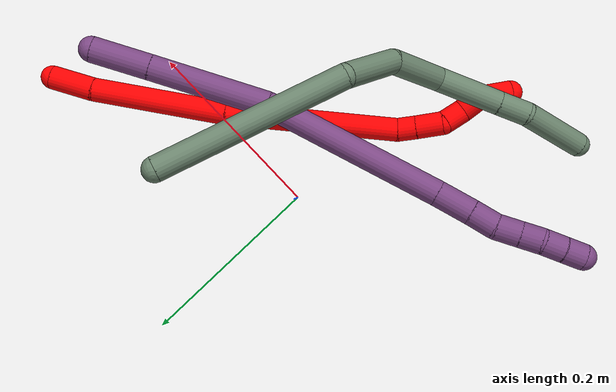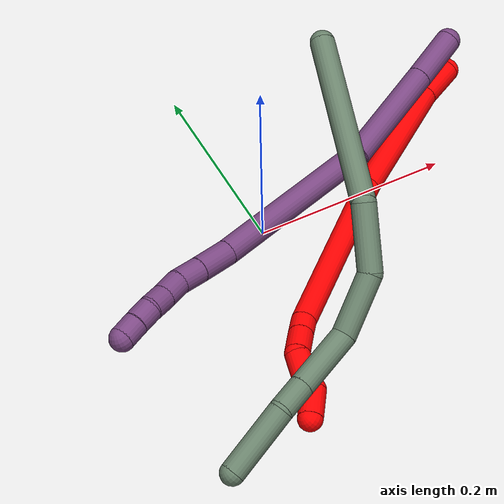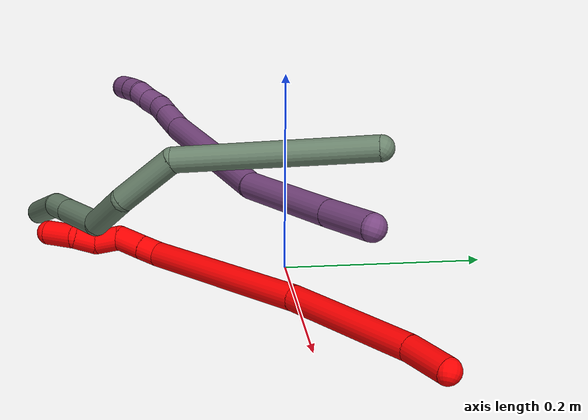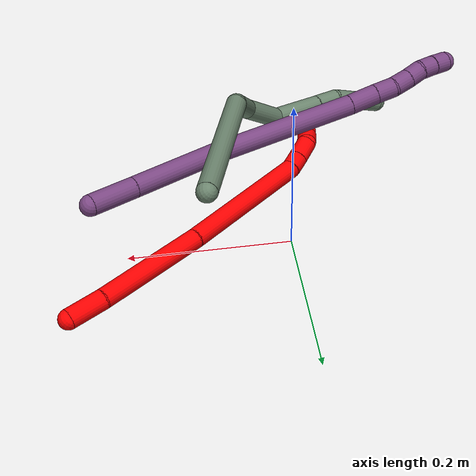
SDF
<sdf version="1.7">
 <world name="default">
  <model name="photoneo_s_sensor">
   <static>1</static>
   <pose>0 0 2 1.57079 1.57079 3.14159</pose>
   <link name="link">
    <inertial><mass>0.1</mass></inertial>
    <sensor name="sensor" type="depth">
     <update_rate>30</update_rate>
     <camera>
      <horizontal_fov>1.22</horizontal_fov>
      <image><width>1920</width><height>1200</height><format>B8G8R8</format></image>
      <clip><near>0.1</near><far>4</far></clip>
      <depth_camera><output>points</output></depth_camera>
     </camera>
     <plugin name="camera_plugin" filename="libgazebo_ros_depth_camera.so">
      <baseline>0.2</baseline>
      <alwaysOn>1</alwaysOn>
      <updateRate>0.0</updateRate>
      <cameraName>camera_ir</cameraName>
      <imageTopicName>/camera/color/image_raw</imageTopicName>
      <cameraInfoTopicName>/camera/color/camera_info</cameraInfoTopicName>
      <depthImageTopicName>/camera/depth/image_raw</depthImageTopicName>
      <depthImageCameraInfoTopicName>/camera/depth/camera_info</depthImageCameraInfoTopicName>
      <pointCloudTopicName>/camera/depth/points</pointCloudTopicName>
      <frameName>fr_optical</frameName>
      <pointCloudCutoff>0.1</pointCloudCutoff>
      <pointCloudCutoffMax>2.0</pointCloudCutoffMax>
      <distortionK1>0</distortionK1>
      <distortionK2>0</distortionK2>
      <distortionK3>0</distortionK3>
      <distortionT1>0</distortionT1>
      <distortionT2>0</distortionT2>
      <CxPrime>0</CxPrime>
      <Cx>0</Cx>
      <Cy>0</Cy>
      <focalLength>0</focalLength>
      <hackBaseline>0</hackBaseline>
     </plugin>
    </sensor>
   </link>
  </model>
  <model name="bin">
   <static>1</static>
   <link name="bottom">
    <collision name="collision-bottom">
     <pose>0 0 -0.01 0 -0 0</pose>
     <geometry><box><size>0.8 0.6 0.02</size></box></geometry>
     <surface>
      <friction><ode><mu>100</mu><mu2>100</mu2></ode></friction>
      <contact><collide_bitmask>65535</collide_bitmask></contact>
     </surface>
    </collision>
   </link>
   <link name="west_wall">
    <collision name="collision-west_wall">
     <pose>-0.41 0 0.1 0 -0 0</pose>
     <geometry><box><size>0.02 0.6 0.2</size></box></geometry>
     <surface>
      <friction><ode><mu>100</mu><mu2>100</mu2></ode></friction>
      <contact><collide_bitmask>65535</collide_bitmask></contact>
     </surface>
    </collision>
   </link>
   <link name="east_wall">
    <collision name="collision-east_wall">
     <pose>0.41 0 0.1 0 -0 0</pose>
     <geometry><box><size>0.02 0.6 0.2</size></box></geometry>
     <surface>
      <friction><ode><mu>100</mu><mu2>100</mu2></ode></friction>
      <contact><collide_bitmask>65535</collide_bitmask></contact>
     </surface>
    </collision>
   </link>
   <link name="south_wall">
    <collision name="collision-south_wall">
     <pose>0 -0.31 0.1 0 -0 0</pose>
     <geometry><box><size>0.8 0.02 0.2</size></box></geometry>
     <surface>
      <friction><ode><mu>100</mu><mu2>100</mu2></ode></friction>
      <contact><collide_bitmask>65535</collide_bitmask></contact>
     </surface>
    </collision>
   </link>
   <link name="north_wall">
    <collision name="collision-north_wall">
     <pose>0 0.31 0.1 0 -0 0</pose>
     <geometry><box><size>0.8 0.02 0.2</size></box></geometry>
     <surface>
      <friction><ode><mu>100</mu><mu2>100</mu2></ode></friction>
      <contact><collide_bitmask>65535</collide_bitmask></contact>
     </surface>
    </collision>
   </link>
  </model>
  <model name="2">
   <static>0</static>
   <link name="2">
    <collision name="collision-cylinder-e_1_1_4">
     <pose>-0.019655 -0.006708 0.009765 0.601879 -1.02836 -0.347101</pose>
     <geometry><cylinder><radius>0.0125</radius><length>0.0459</length></cylinder></geometry>
     <surface>
      <friction><ode><mu>1.16</mu><mu2>1.16</mu2><slip1>0</slip1><slip2>0</slip2></ode></friction>
      <contact><ode><kp>1e+06</kp><kd>1</kd><max_vel>0</max_vel><min_depth>0.001</min_depth></ode></contact>
     </surface>
    </collision>
    <visual name="visual-cylinder-e_1_1_4">
     <pose>-0.019655 -0.006708 0.009765 0.601879 -1.02836 -0.347101</pose>
     <geometry><cylinder><radius>0.0125</radius><length>0.0459</length></cylinder></geometry>
     <material><ambient>1 0 0 1</ambient></material>
    </visual>
    <collision name="collision-cylinder-e_2_4_5">
     <pose>-0.10122 -0.039114 0.042359 0.844472 -1.06395 -0.517007</pose>
     <geometry><cylinder><radius>0.0125</radius><length>0.141624</length></cylinder></geometry>
     <surface>
      <friction><ode><mu>1.16</mu><mu2>1.16</mu2><slip1>0</slip1><slip2>0</slip2></ode></friction>
      <contact><ode><kp>1e+06</kp><kd>1</kd><max_vel>0</max_vel><min_depth>0.001</min_depth></ode></contact>
     </surface>
    </collision>
    <visual name="visual-cylinder-e_2_4_5">
     <pose>-0.10122 -0.039114 0.042359 0.844472 -1.06395 -0.517007</pose>
     <geometry><cylinder><radius>0.0125</radius><length>0.141624</length></cylinder></geometry>
     <material><ambient>1 0 0 1</ambient></material>
    </visual>
    <collision name="collision-cylinder-e_3_5_6">
     <pose>-0.243137 -0.102795 0.08781 1.03361 -1.06599 -0.647012</pose>
     <geometry><cylinder><radius>0.0125</radius><length>0.182817</length></cylinder></geometry>
     <surface>
      <friction><ode><mu>1.16</mu><mu2>1.16</mu2><slip1>0</slip1><slip2>0</slip2></ode></friction>
      <contact><ode><kp>1e+06</kp><kd>1</kd><max_vel>0</max_vel><min_depth>0.001</min_depth></ode></contact>
     </surface>
    </collision>
    <visual name="visual-cylinder-e_3_5_6">
     <pose>-0.243137 -0.102795 0.08781 1.03361 -1.06599 -0.647012</pose>
     <geometry><cylinder><radius>0.0125</radius><length>0.182817</length></cylinder></geometry>
     <material><ambient>1 0 0 1</ambient></material>
    </visual>
    <collision name="collision-cylinder-e_4_6_7">
     <pose>-0.330281 -0.147382 0.113091 1.18816 -0.786643 -0.546548</pose>
     <geometry><cylinder><radius>0.0125</radius><length>0.020164</length></cylinder></geometry>
     <surface>
      <friction><ode><mu>1.16</mu><mu2>1.16</mu2><slip1>0</slip1><slip2>0</slip2></ode></friction>
      <contact><ode><kp>1e+06</kp><kd>1</kd><max_vel>0</max_vel><min_depth>0.001</min_depth></ode></contact>
     </surface>
    </collision>
    <visual name="visual-cylinder-e_4_6_7">
     <pose>-0.330281 -0.147382 0.113091 1.18816 -0.786643 -0.546548</pose>
     <geometry><cylinder><radius>0.0125</radius><length>0.020164</length></cylinder></geometry>
     <material><ambient>1 0 0 1</ambient></material>
    </visual>
    <collision name="collision-cylinder-e_5_7_8">
     <pose>-0.347173 -0.163748 0.119657 1.19001 -0.747891 -0.5192</pose>
     <geometry><cylinder><radius>0.0125</radius><length>0.028684</length></cylinder></geometry>
     <surface>
      <friction><ode><mu>1.16</mu><mu2>1.16</mu2><slip1>0</slip1><slip2>0</slip2></ode></friction>
      <contact><ode><kp>1e+06</kp><kd>1</kd><max_vel>0</max_vel><min_depth>0.001</min_depth></ode></contact>
     </surface>
    </collision>
    <visual name="visual-cylinder-e_5_7_8">
     <pose>-0.347173 -0.163748 0.119657 1.19001 -0.747891 -0.5192</pose>
     <geometry><cylinder><radius>0.0125</radius><length>0.028684</length></cylinder></geometry>
     <material><ambient>1 0 0 1</ambient></material>
    </visual>
    <collision name="collision-cylinder-e_6_8_9">
     <pose>-0.365011 -0.182327 0.119679 1.98587 -0.698085 -1.01807</pose>
     <geometry><cylinder><radius>0.0125</radius><length>0.025156</length></cylinder></geometry>
     <surface>
      <friction><ode><mu>1.16</mu><mu2>1.16</mu2><slip1>0</slip1><slip2>0</slip2></ode></friction>
      <contact><ode><kp>1e+06</kp><kd>1</kd><max_vel>0</max_vel><min_depth>0.001</min_depth></ode></contact>
     </surface>
    </collision>
    <visual name="visual-cylinder-e_6_8_9">
     <pose>-0.365011 -0.182327 0.119679 1.98587 -0.698085 -1.01807</pose>
     <geometry><cylinder><radius>0.0125</radius><length>0.025156</length></cylinder></geometry>
     <material><ambient>1 0 0 1</ambient></material>
    </visual>
    <collision name="collision-cylinder-e_7_9_10">
     <pose>-0.376886 -0.201711 0.115977 1.55338 -0.344378 -0.338546</pose>
     <geometry><cylinder><radius>0.0125</radius><length>0.022454</length></cylinder></geometry>
     <surface>
      <friction><ode><mu>1.16</mu><mu2>1.16</mu2><slip1>0</slip1><slip2>0</slip2></ode></friction>
      <contact><ode><kp>1e+06</kp><kd>1</kd><max_vel>0</max_vel><min_depth>0.001</min_depth></ode></contact>
     </surface>
    </collision>
    <visual name="visual-cylinder-e_7_9_10">
     <pose>-0.376886 -0.201711 0.115977 1.55338 -0.344378 -0.338546</pose>
     <geometry><cylinder><radius>0.0125</radius><length>0.022454</length></cylinder></geometry>
     <material><ambient>1 0 0 1</ambient></material>
    </visual>
    <collision name="collision-cylinder-e_8_10_2">
     <pose>-0.393822 -0.222337 0.117424 1.44597 -0.913763 -0.818507</pose>
     <geometry><cylinder><radius>0.0125</radius><length>0.033202</length></cylinder></geometry>
     <surface>
      <friction><ode><mu>1.16</mu><mu2>1.16</mu2><slip1>0</slip1><slip2>0</slip2></ode></friction>
      <contact><ode><kp>1e+06</kp><kd>1</kd><max_vel>0</max_vel><min_depth>0.001</min_depth></ode></contact>
     </surface>
    </collision>
    <visual name="visual-cylinder-e_8_10_2">
     <pose>-0.393822 -0.222337 0.117424 1.44597 -0.913763 -0.818507</pose>
     <geometry><cylinder><radius>0.0125</radius><length>0.033202</length></cylinder></geometry>
     <material><ambient>1 0 0 1</ambient></material>
    </visual>
    <collision name="collision-sphere-2">
     <pose>-0.406967 -0.232398 0.118686 0 -0 0</pose>
     <geometry><sphere><radius>0.0125</radius></sphere></geometry>
     <surface>
      <friction><ode><mu>1.16</mu><mu2>1.16</mu2><slip1>0</slip1><slip2>0</slip2></ode></friction>
      <contact><ode><kp>1e+06</kp><kd>1</kd><max_vel>0</max_vel><min_depth>0.001</min_depth></ode></contact>
     </surface>
    </collision>
    <visual name="visual-sphere-2">
     <pose>-0.406967 -0.232398 0.118686 0 -0 0</pose>
     <geometry><sphere><radius>0.0125</radius></sphere></geometry>
     <material><ambient>1 0 0 1</ambient></material>
    </visual>
    <collision name="collision-sphere-10">
     <pose>-0.380677 -0.212277 0.116161 0 -0 0</pose>
     <geometry><sphere><radius>0.0125</radius></sphere></geometry>
     <surface>
      <friction><ode><mu>1.16</mu><mu2>1.16</mu2><slip1>0</slip1><slip2>0</slip2></ode></friction>
      <contact><ode><kp>1e+06</kp><kd>1</kd><max_vel>0</max_vel><min_depth>0.001</min_depth></ode></contact>
     </surface>
    </collision>
    <visual name="visual-sphere-10">
     <pose>-0.380677 -0.212277 0.116161 0 -0 0</pose>
     <geometry><sphere><radius>0.0125</radius></sphere></geometry>
     <material><ambient>1 0 0 1</ambient></material>
    </visual>
    <collision name="collision-sphere-9">
     <pose>-0.373096 -0.191144 0.115793 0 -0 0</pose>
     <geometry><sphere><radius>0.0125</radius></sphere></geometry>
     <surface>
      <friction><ode><mu>1.16</mu><mu2>1.16</mu2><slip1>0</slip1><slip2>0</slip2></ode></friction>
      <contact><ode><kp>1e+06</kp><kd>1</kd><max_vel>0</max_vel><min_depth>0.001</min_depth></ode></contact>
     </surface>
    </collision>
    <visual name="visual-sphere-9">
     <pose>-0.373096 -0.191144 0.115793 0 -0 0</pose>
     <geometry><sphere><radius>0.0125</radius></sphere></geometry>
     <material><ambient>1 0 0 1</ambient></material>
    </visual>
    <collision name="collision-sphere-4">
     <pose>-0.039311 -0.013416 0.019531 0 -0 0</pose>
     <geometry><sphere><radius>0.0125</radius></sphere></geometry>
     <surface>
      <friction><ode><mu>1.16</mu><mu2>1.16</mu2><slip1>0</slip1><slip2>0</slip2></ode></friction>
      <contact><ode><kp>1e+06</kp><kd>1</kd><max_vel>0</max_vel><min_depth>0.001</min_depth></ode></contact>
     </surface>
    </collision>
    <visual name="visual-sphere-4">
     <pose>-0.039311 -0.013416 0.019531 0 -0 0</pose>
     <geometry><sphere><radius>0.0125</radius></sphere></geometry>
     <material><ambient>1 0 0 1</ambient></material>
    </visual>
    <collision name="collision-sphere-1">
     <geometry><sphere><radius>0.0125</radius></sphere></geometry>
     <surface>
      <friction><ode><mu>1.16</mu><mu2>1.16</mu2><slip1>0</slip1><slip2>0</slip2></ode></friction>
      <contact><ode><kp>1e+06</kp><kd>1</kd><max_vel>0</max_vel><min_depth>0.001</min_depth></ode></contact>
     </surface>
    </collision>
    <visual name="visual-sphere-1">
     <geometry><sphere><radius>0.0125</radius></sphere></geometry>
     <material><ambient>1 0 0 1</ambient></material>
    </visual>
    <collision name="collision-sphere-8">
     <pose>-0.356927 -0.173509 0.123564 0 -0 0</pose>
     <geometry><sphere><radius>0.0125</radius></sphere></geometry>
     <surface>
      <friction><ode><mu>1.16</mu><mu2>1.16</mu2><slip1>0</slip1><slip2>0</slip2></ode></friction>
      <contact><ode><kp>1e+06</kp><kd>1</kd><max_vel>0</max_vel><min_depth>0.001</min_depth></ode></contact>
     </surface>
    </collision>
    <visual name="visual-sphere-8">
     <pose>-0.356927 -0.173509 0.123564 0 -0 0</pose>
     <geometry><sphere><radius>0.0125</radius></sphere></geometry>
     <material><ambient>1 0 0 1</ambient></material>
    </visual>
    <collision name="collision-sphere-5">
     <pose>-0.16313 -0.064813 0.065188 0 -0 0</pose>
     <geometry><sphere><radius>0.0125</radius></sphere></geometry>
     <surface>
      <friction><ode><mu>1.16</mu><mu2>1.16</mu2><slip1>0</slip1><slip2>0</slip2></ode></friction>
      <contact><ode><kp>1e+06</kp><kd>1</kd><max_vel>0</max_vel><min_depth>0.001</min_depth></ode></contact>
     </surface>
    </collision>
    <visual name="visual-sphere-5">
     <pose>-0.16313 -0.064813 0.065188 0 -0 0</pose>
     <geometry><sphere><radius>0.0125</radius></sphere></geometry>
     <material><ambient>1 0 0 1</ambient></material>
    </visual>
    <collision name="collision-sphere-6">
     <pose>-0.323143 -0.140776 0.110432 0 -0 0</pose>
     <geometry><sphere><radius>0.0125</radius></sphere></geometry>
     <surface>
      <friction><ode><mu>1.16</mu><mu2>1.16</mu2><slip1>0</slip1><slip2>0</slip2></ode></friction>
      <contact><ode><kp>1e+06</kp><kd>1</kd><max_vel>0</max_vel><min_depth>0.001</min_depth></ode></contact>
     </surface>
    </collision>
    <visual name="visual-sphere-6">
     <pose>-0.323143 -0.140776 0.110432 0 -0 0</pose>
     <geometry><sphere><radius>0.0125</radius></sphere></geometry>
     <material><ambient>1 0 0 1</ambient></material>
    </visual>
    <collision name="collision-sphere-7">
     <pose>-0.337419 -0.153987 0.115749 0 -0 0</pose>
     <geometry><sphere><radius>0.0125</radius></sphere></geometry>
     <surface>
      <friction><ode><mu>1.16</mu><mu2>1.16</mu2><slip1>0</slip1><slip2>0</slip2></ode></friction>
      <contact><ode><kp>1e+06</kp><kd>1</kd><max_vel>0</max_vel><min_depth>0.001</min_depth></ode></contact>
     </surface>
    </collision>
    <visual name="visual-sphere-7">
     <pose>-0.337419 -0.153987 0.115749 0 -0 0</pose>
     <geometry><sphere><radius>0.0125</radius></sphere></geometry>
     <material><ambient>1 0 0 1</ambient></material>
    </visual>
    <inertial>
     <pose>-0.214051 -0.097613 0.075453 0 -0 0</pose>
     <mass>0.5</mass>
     <inertia>
      <ixx>6.6e-05</ixx>
      <ixy>0</ixy>
      <ixz>0</ixz>
      <iyy>0.000445</iyy>
      <iyz>0</iyz>
      <izz>0.001004</izz>
     </inertia>
    </inertial>
   </link>
   <pose>0.270781 0.100546 0.012218 -0.523349 -0.476601 0.479194</pose>
  </model>
  <model name="17">
   <static>0</static>
   <link name="17">
    <collision name="collision-cylinder-e_1_1_4">
     <pose>-0.060422 -0.069358 0.033386 1.12218 -0.665501 -0.427755</pose>
     <geometry><cylinder><radius>0.0125</radius><length>0.195715</length></cylinder></geometry>
     <surface>
      <friction><ode><mu>1.16</mu><mu2>1.16</mu2><slip1>0</slip1><slip2>0</slip2></ode></friction>
      <contact><ode><kp>1e+06</kp><kd>1</kd><max_vel>0</max_vel><min_depth>0.001</min_depth></ode></contact>
     </surface>
    </collision>
    <visual name="visual-cylinder-e_1_1_4">
     <pose>-0.060422 -0.069358 0.033386 1.12218 -0.665501 -0.427755</pose>
     <geometry><cylinder><radius>0.0125</radius><length>0.195715</length></cylinder></geometry>
     <material><ambient>0.415686 0.509804 0.423529 1</ambient></material>
    </visual>
    <collision name="collision-cylinder-e_2_4_5">
     <pose>-0.12453 -0.164501 0.088014 0.881661 -0.10987 -0.051877</pose>
     <geometry><cylinder><radius>0.0125</radius><length>0.06722</length></cylinder></geometry>
     <surface>
      <friction><ode><mu>1.16</mu><mu2>1.16</mu2><slip1>0</slip1><slip2>0</slip2></ode></friction>
      <contact><ode><kp>1e+06</kp><kd>1</kd><max_vel>0</max_vel><min_depth>0.001</min_depth></ode></contact>
     </surface>
    </collision>
    <visual name="visual-cylinder-e_2_4_5">
     <pose>-0.12453 -0.164501 0.088014 0.881661 -0.10987 -0.051877</pose>
     <geometry><cylinder><radius>0.0125</radius><length>0.06722</length></cylinder></geometry>
     <material><ambient>0.415686 0.509804 0.423529 1</ambient></material>
    </visual>
    <collision name="collision-cylinder-e_3_5_6">
     <pose>-0.123156 -0.22064 0.117645 1.3012 0.159278 0.121343</pose>
     <geometry><cylinder><radius>0.0125</radius><length>0.063793</length></cylinder></geometry>
     <surface>
      <friction><ode><mu>1.16</mu><mu2>1.16</mu2><slip1>0</slip1><slip2>0</slip2></ode></friction>
      <contact><ode><kp>1e+06</kp><kd>1</kd><max_vel>0</max_vel><min_depth>0.001</min_depth></ode></contact>
     </surface>
    </collision>
    <visual name="visual-cylinder-e_3_5_6">
     <pose>-0.123156 -0.22064 0.117645 1.3012 0.159278 0.121343</pose>
     <geometry><cylinder><radius>0.0125</radius><length>0.063793</length></cylinder></geometry>
     <material><ambient>0.415686 0.509804 0.423529 1</ambient></material>
    </visual>
    <collision name="collision-cylinder-e_4_6_7">
     <pose>-0.121863 -0.283954 0.118543 1.79422 -0.110949 -0.138906</pose>
     <geometry><cylinder><radius>0.0125</radius><length>0.068017</length></cylinder></geometry>
     <surface>
      <friction><ode><mu>1.16</mu><mu2>1.16</mu2><slip1>0</slip1><slip2>0</slip2></ode></friction>
      <contact><ode><kp>1e+06</kp><kd>1</kd><max_vel>0</max_vel><min_depth>0.001</min_depth></ode></contact>
     </surface>
    </collision>
    <visual name="visual-cylinder-e_4_6_7">
     <pose>-0.121863 -0.283954 0.118543 1.79422 -0.110949 -0.138906</pose>
     <geometry><cylinder><radius>0.0125</radius><length>0.068017</length></cylinder></geometry>
     <material><ambient>0.415686 0.509804 0.423529 1</ambient></material>
    </visual>
    <collision name="collision-cylinder-e_5_7_8">
     <pose>-0.127595 -0.332329 0.107387 1.80434 -0.123479 -0.156179</pose>
     <geometry><cylinder><radius>0.0125</radius><length>0.031935</length></cylinder></geometry>
     <surface>
      <friction><ode><mu>1.16</mu><mu2>1.16</mu2><slip1>0</slip1><slip2>0</slip2></ode></friction>
      <contact><ode><kp>1e+06</kp><kd>1</kd><max_vel>0</max_vel><min_depth>0.001</min_depth></ode></contact>
     </surface>
    </collision>
    <visual name="visual-cylinder-e_5_7_8">
     <pose>-0.127595 -0.332329 0.107387 1.80434 -0.123479 -0.156179</pose>
     <geometry><cylinder><radius>0.0125</radius><length>0.031935</length></cylinder></geometry>
     <material><ambient>0.415686 0.509804 0.423529 1</ambient></material>
    </visual>
    <collision name="collision-cylinder-e_6_8_2">
     <pose>-0.123943 -0.383947 0.102384 1.60768 0.153852 0.159609</pose>
     <geometry><cylinder><radius>0.0125</radius><length>0.07332</length></cylinder></geometry>
     <surface>
      <friction><ode><mu>1.16</mu><mu2>1.16</mu2><slip1>0</slip1><slip2>0</slip2></ode></friction>
      <contact><ode><kp>1e+06</kp><kd>1</kd><max_vel>0</max_vel><min_depth>0.001</min_depth></ode></contact>
     </surface>
    </collision>
    <visual name="visual-cylinder-e_6_8_2">
     <pose>-0.123943 -0.383947 0.102384 1.60768 0.153852 0.159609</pose>
     <geometry><cylinder><radius>0.0125</radius><length>0.07332</length></cylinder></geometry>
     <material><ambient>0.415686 0.509804 0.423529 1</ambient></material>
    </visual>
    <collision name="collision-sphere-2">
     <pose>-0.118325 -0.42015 0.101048 0 -0 0</pose>
     <geometry><sphere><radius>0.0125</radius></sphere></geometry>
     <surface>
      <friction><ode><mu>1.16</mu><mu2>1.16</mu2><slip1>0</slip1><slip2>0</slip2></ode></friction>
      <contact><ode><kp>1e+06</kp><kd>1</kd><max_vel>0</max_vel><min_depth>0.001</min_depth></ode></contact>
     </surface>
    </collision>
    <visual name="visual-sphere-2">
     <pose>-0.118325 -0.42015 0.101048 0 -0 0</pose>
     <geometry><sphere><radius>0.0125</radius></sphere></geometry>
     <material><ambient>0.415686 0.509804 0.423529 1</ambient></material>
    </visual>
    <collision name="collision-sphere-4">
     <pose>-0.120845 -0.138717 0.066771 0 -0 0</pose>
     <geometry><sphere><radius>0.0125</radius></sphere></geometry>
     <surface>
      <friction><ode><mu>1.16</mu><mu2>1.16</mu2><slip1>0</slip1><slip2>0</slip2></ode></friction>
      <contact><ode><kp>1e+06</kp><kd>1</kd><max_vel>0</max_vel><min_depth>0.001</min_depth></ode></contact>
     </surface>
    </collision>
    <visual name="visual-sphere-4">
     <pose>-0.120845 -0.138717 0.066771 0 -0 0</pose>
     <geometry><sphere><radius>0.0125</radius></sphere></geometry>
     <material><ambient>0.415686 0.509804 0.423529 1</ambient></material>
    </visual>
    <collision name="collision-sphere-1">
     <geometry><sphere><radius>0.0125</radius></sphere></geometry>
     <surface>
      <friction><ode><mu>1.16</mu><mu2>1.16</mu2><slip1>0</slip1><slip2>0</slip2></ode></friction>
      <contact><ode><kp>1e+06</kp><kd>1</kd><max_vel>0</max_vel><min_depth>0.001</min_depth></ode></contact>
     </surface>
    </collision>
    <visual name="visual-sphere-1">
     <geometry><sphere><radius>0.0125</radius></sphere></geometry>
     <material><ambient>0.415686 0.509804 0.423529 1</ambient></material>
    </visual>
    <collision name="collision-sphere-8">
     <pose>-0.129562 -0.347745 0.10372 0 -0 0</pose>
     <geometry><sphere><radius>0.0125</radius></sphere></geometry>
     <surface>
      <friction><ode><mu>1.16</mu><mu2>1.16</mu2><slip1>0</slip1><slip2>0</slip2></ode></friction>
      <contact><ode><kp>1e+06</kp><kd>1</kd><max_vel>0</max_vel><min_depth>0.001</min_depth></ode></contact>
     </surface>
    </collision>
    <visual name="visual-sphere-8">
     <pose>-0.129562 -0.347745 0.10372 0 -0 0</pose>
     <geometry><sphere><radius>0.0125</radius></sphere></geometry>
     <material><ambient>0.415686 0.509804 0.423529 1</ambient></material>
    </visual>
    <collision name="collision-sphere-5">
     <pose>-0.128215 -0.190284 0.109257 0 -0 0</pose>
     <geometry><sphere><radius>0.0125</radius></sphere></geometry>
     <surface>
      <friction><ode><mu>1.16</mu><mu2>1.16</mu2><slip1>0</slip1><slip2>0</slip2></ode></friction>
      <contact><ode><kp>1e+06</kp><kd>1</kd><max_vel>0</max_vel><min_depth>0.001</min_depth></ode></contact>
     </surface>
    </collision>
    <visual name="visual-sphere-5">
     <pose>-0.128215 -0.190284 0.109257 0 -0 0</pose>
     <geometry><sphere><radius>0.0125</radius></sphere></geometry>
     <material><ambient>0.415686 0.509804 0.423529 1</ambient></material>
    </visual>
    <collision name="collision-sphere-6">
     <pose>-0.118097 -0.250995 0.126032 0 -0 0</pose>
     <geometry><sphere><radius>0.0125</radius></sphere></geometry>
     <surface>
      <friction><ode><mu>1.16</mu><mu2>1.16</mu2><slip1>0</slip1><slip2>0</slip2></ode></friction>
      <contact><ode><kp>1e+06</kp><kd>1</kd><max_vel>0</max_vel><min_depth>0.001</min_depth></ode></contact>
     </surface>
    </collision>
    <visual name="visual-sphere-6">
     <pose>-0.118097 -0.250995 0.126032 0 -0 0</pose>
     <geometry><sphere><radius>0.0125</radius></sphere></geometry>
     <material><ambient>0.415686 0.509804 0.423529 1</ambient></material>
    </visual>
    <collision name="collision-sphere-7">
     <pose>-0.125628 -0.316913 0.111054 0 -0 0</pose>
     <geometry><sphere><radius>0.0125</radius></sphere></geometry>
     <surface>
      <friction><ode><mu>1.16</mu><mu2>1.16</mu2><slip1>0</slip1><slip2>0</slip2></ode></friction>
      <contact><ode><kp>1e+06</kp><kd>1</kd><max_vel>0</max_vel><min_depth>0.001</min_depth></ode></contact>
     </surface>
    </collision>
    <visual name="visual-sphere-7">
     <pose>-0.125628 -0.316913 0.111054 0 -0 0</pose>
     <geometry><sphere><radius>0.0125</radius></sphere></geometry>
     <material><ambient>0.415686 0.509804 0.423529 1</ambient></material>
    </visual>
    <inertial>
     <pose>-0.099008 -0.19357 0.077909 0 -0 0</pose>
     <mass>0.5</mass>
     <inertia>
      <ixx>0.000358</ixx>
      <ixy>0</ixy>
      <ixz>0</ixz>
      <iyy>0.000176</iyy>
      <iyz>0</iyz>
      <izz>0.000955</izz>
     </inertia>
    </inertial>
   </link>
   <pose>0.106618 0.073491 0.154796 2.70765 0.646785 1.80435</pose>
  </model>
  <model name="20">
   <static>0</static>
   <link name="20">
    <collision name="collision-cylinder-e_1_1_4">
     <pose>-0.026628 -0.009306 6.1e-05 1.56421 -1.23457 -1.22836</pose>
     <geometry><cylinder><radius>0.0125</radius><length>0.056414</length></cylinder></geometry>
     <surface>
      <friction><ode><mu>1.16</mu><mu2>1.16</mu2><slip1>0</slip1><slip2>0</slip2></ode></friction>
      <contact><ode><kp>1e+06</kp><kd>1</kd><max_vel>0</max_vel><min_depth>0.001</min_depth></ode></contact>
     </surface>
    </collision>
    <visual name="visual-cylinder-e_1_1_4">
     <pose>-0.026628 -0.009306 6.1e-05 1.56421 -1.23457 -1.22836</pose>
     <geometry><cylinder><radius>0.0125</radius><length>0.056414</length></cylinder></geometry>
     <material><ambient>0.478431 0.278431 0.509804 1</ambient></material>
    </visual>
    <collision name="collision-cylinder-e_2_4_5">
     <pose>-0.107848 -0.037683 0.001144 1.51732 -1.23427 -1.18423</pose>
     <geometry><cylinder><radius>0.0125</radius><length>0.115675</length></cylinder></geometry>
     <surface>
      <friction><ode><mu>1.16</mu><mu2>1.16</mu2><slip1>0</slip1><slip2>0</slip2></ode></friction>
      <contact><ode><kp>1e+06</kp><kd>1</kd><max_vel>0</max_vel><min_depth>0.001</min_depth></ode></contact>
     </surface>
    </collision>
    <visual name="visual-cylinder-e_2_4_5">
     <pose>-0.107848 -0.037683 0.001144 1.51732 -1.23427 -1.18423</pose>
     <geometry><cylinder><radius>0.0125</radius><length>0.115675</length></cylinder></geometry>
     <material><ambient>0.478431 0.278431 0.509804 1</ambient></material>
    </visual>
    <collision name="collision-cylinder-e_3_5_6">
     <pose>-0.249206 -0.075794 0.019338 0.836888 -1.28346 -0.641645</pose>
     <geometry><cylinder><radius>0.0125</radius><length>0.180948</length></cylinder></geometry>
     <surface>
      <friction><ode><mu>1.16</mu><mu2>1.16</mu2><slip1>0</slip1><slip2>0</slip2></ode></friction>
      <contact><ode><kp>1e+06</kp><kd>1</kd><max_vel>0</max_vel><min_depth>0.001</min_depth></ode></contact>
     </surface>
    </collision>
    <visual name="visual-cylinder-e_3_5_6">
     <pose>-0.249206 -0.075794 0.019338 0.836888 -1.28346 -0.641645</pose>
     <geometry><cylinder><radius>0.0125</radius><length>0.180948</length></cylinder></geometry>
     <material><ambient>0.478431 0.278431 0.509804 1</ambient></material>
    </visual>
    <collision name="collision-cylinder-e_4_6_7">
     <pose>-0.352769 -0.098756 0.041601 0.656585 -1.20542 -0.460461</pose>
     <geometry><cylinder><radius>0.0125</radius><length>0.035971</length></cylinder></geometry>
     <surface>
      <friction><ode><mu>1.16</mu><mu2>1.16</mu2><slip1>0</slip1><slip2>0</slip2></ode></friction>
      <contact><ode><kp>1e+06</kp><kd>1</kd><max_vel>0</max_vel><min_depth>0.001</min_depth></ode></contact>
     </surface>
    </collision>
    <visual name="visual-cylinder-e_4_6_7">
     <pose>-0.352769 -0.098756 0.041601 0.656585 -1.20542 -0.460461</pose>
     <geometry><cylinder><radius>0.0125</radius><length>0.035971</length></cylinder></geometry>
     <material><ambient>0.478431 0.278431 0.509804 1</ambient></material>
    </visual>
    <collision name="collision-cylinder-e_5_7_8">
     <pose>-0.381641 -0.105137 0.050407 0.584538 -1.21727 -0.413377</pose>
     <geometry><cylinder><radius>0.0125</radius><length>0.025739</length></cylinder></geometry>
     <surface>
      <friction><ode><mu>1.16</mu><mu2>1.16</mu2><slip1>0</slip1><slip2>0</slip2></ode></friction>
      <contact><ode><kp>1e+06</kp><kd>1</kd><max_vel>0</max_vel><min_depth>0.001</min_depth></ode></contact>
     </surface>
    </collision>
    <visual name="visual-cylinder-e_5_7_8">
     <pose>-0.381641 -0.105137 0.050407 0.584538 -1.21727 -0.413377</pose>
     <geometry><cylinder><radius>0.0125</radius><length>0.025739</length></cylinder></geometry>
     <material><ambient>0.478431 0.278431 0.509804 1</ambient></material>
    </visual>
    <collision name="collision-cylinder-e_6_8_9">
     <pose>-0.404467 -0.112164 0.056103 1.16171 -1.13716 -0.794255</pose>
     <geometry><cylinder><radius>0.0125</radius><length>0.023698</length></cylinder></geometry>
     <surface>
      <friction><ode><mu>1.16</mu><mu2>1.16</mu2><slip1>0</slip1><slip2>0</slip2></ode></friction>
      <contact><ode><kp>1e+06</kp><kd>1</kd><max_vel>0</max_vel><min_depth>0.001</min_depth></ode></contact>
     </surface>
    </collision>
    <visual name="visual-cylinder-e_6_8_9">
     <pose>-0.404467 -0.112164 0.056103 1.16171 -1.13716 -0.794255</pose>
     <geometry><cylinder><radius>0.0125</radius><length>0.023698</length></cylinder></geometry>
     <material><ambient>0.478431 0.278431 0.509804 1</ambient></material>
    </visual>
    <collision name="collision-cylinder-e_7_9_10">
     <pose>-0.424428 -0.121166 0.060744 1.03035 -1.05916 -0.640037</pose>
     <geometry><cylinder><radius>0.0125</radius><length>0.021122</length></cylinder></geometry>
     <surface>
      <friction><ode><mu>1.16</mu><mu2>1.16</mu2><slip1>0</slip1><slip2>0</slip2></ode></friction>
      <contact><ode><kp>1e+06</kp><kd>1</kd><max_vel>0</max_vel><min_depth>0.001</min_depth></ode></contact>
     </surface>
    </collision>
    <visual name="visual-cylinder-e_7_9_10">
     <pose>-0.424428 -0.121166 0.060744 1.03035 -1.05916 -0.640037</pose>
     <geometry><cylinder><radius>0.0125</radius><length>0.021122</length></cylinder></geometry>
     <material><ambient>0.478431 0.278431 0.509804 1</ambient></material>
    </visual>
    <collision name="collision-cylinder-e_8_10_11">
     <pose>-0.443351 -0.12849 0.064108 1.33185 -1.27362 -1.05275</pose>
     <geometry><cylinder><radius>0.0125</radius><length>0.02032</length></cylinder></geometry>
     <surface>
      <friction><ode><mu>1.16</mu><mu2>1.16</mu2><slip1>0</slip1><slip2>0</slip2></ode></friction>
      <contact><ode><kp>1e+06</kp><kd>1</kd><max_vel>0</max_vel><min_depth>0.001</min_depth></ode></contact>
     </surface>
    </collision>
    <visual name="visual-cylinder-e_8_10_11">
     <pose>-0.443351 -0.12849 0.064108 1.33185 -1.27362 -1.05275</pose>
     <geometry><cylinder><radius>0.0125</radius><length>0.02032</length></cylinder></geometry>
     <material><ambient>0.478431 0.278431 0.509804 1</ambient></material>
    </visual>
    <collision name="collision-cylinder-e_9_11_2">
     <pose>-0.462768 -0.134024 0.064964 1.51368 -1.30432 -1.24963</pose>
     <geometry><cylinder><radius>0.0125</radius><length>0.020113</length></cylinder></geometry>
     <surface>
      <friction><ode><mu>1.16</mu><mu2>1.16</mu2><slip1>0</slip1><slip2>0</slip2></ode></friction>
      <contact><ode><kp>1e+06</kp><kd>1</kd><max_vel>0</max_vel><min_depth>0.001</min_depth></ode></contact>
     </surface>
    </collision>
    <visual name="visual-cylinder-e_9_11_2">
     <pose>-0.462768 -0.134024 0.064964 1.51368 -1.30432 -1.24963</pose>
     <geometry><cylinder><radius>0.0125</radius><length>0.020113</length></cylinder></geometry>
     <material><ambient>0.478431 0.278431 0.509804 1</ambient></material>
    </visual>
    <collision name="collision-sphere-2">
     <pose>-0.472469 -0.136668 0.065115 0 -0 0</pose>
     <geometry><sphere><radius>0.0125</radius></sphere></geometry>
     <surface>
      <friction><ode><mu>1.16</mu><mu2>1.16</mu2><slip1>0</slip1><slip2>0</slip2></ode></friction>
      <contact><ode><kp>1e+06</kp><kd>1</kd><max_vel>0</max_vel><min_depth>0.001</min_depth></ode></contact>
     </surface>
    </collision>
    <visual name="visual-sphere-2">
     <pose>-0.472469 -0.136668 0.065115 0 -0 0</pose>
     <geometry><sphere><radius>0.0125</radius></sphere></geometry>
     <material><ambient>0.478431 0.278431 0.509804 1</ambient></material>
    </visual>
    <collision name="collision-sphere-11">
     <pose>-0.453066 -0.13138 0.064812 0 -0 0</pose>
     <geometry><sphere><radius>0.0125</radius></sphere></geometry>
     <surface>
      <friction><ode><mu>1.16</mu><mu2>1.16</mu2><slip1>0</slip1><slip2>0</slip2></ode></friction>
      <contact><ode><kp>1e+06</kp><kd>1</kd><max_vel>0</max_vel><min_depth>0.001</min_depth></ode></contact>
     </surface>
    </collision>
    <visual name="visual-sphere-11">
     <pose>-0.453066 -0.13138 0.064812 0 -0 0</pose>
     <geometry><sphere><radius>0.0125</radius></sphere></geometry>
     <material><ambient>0.478431 0.278431 0.509804 1</ambient></material>
    </visual>
    <collision name="collision-sphere-10">
     <pose>-0.433637 -0.125599 0.063404 0 -0 0</pose>
     <geometry><sphere><radius>0.0125</radius></sphere></geometry>
     <surface>
      <friction><ode><mu>1.16</mu><mu2>1.16</mu2><slip1>0</slip1><slip2>0</slip2></ode></friction>
      <contact><ode><kp>1e+06</kp><kd>1</kd><max_vel>0</max_vel><min_depth>0.001</min_depth></ode></contact>
     </surface>
    </collision>
    <visual name="visual-sphere-10">
     <pose>-0.433637 -0.125599 0.063404 0 -0 0</pose>
     <geometry><sphere><radius>0.0125</radius></sphere></geometry>
     <material><ambient>0.478431 0.278431 0.509804 1</ambient></material>
    </visual>
    <collision name="collision-sphere-9">
     <pose>-0.41522 -0.116732 0.058083 0 -0 0</pose>
     <geometry><sphere><radius>0.0125</radius></sphere></geometry>
     <surface>
      <friction><ode><mu>1.16</mu><mu2>1.16</mu2><slip1>0</slip1><slip2>0</slip2></ode></friction>
      <contact><ode><kp>1e+06</kp><kd>1</kd><max_vel>0</max_vel><min_depth>0.001</min_depth></ode></contact>
     </surface>
    </collision>
    <visual name="visual-sphere-9">
     <pose>-0.41522 -0.116732 0.058083 0 -0 0</pose>
     <geometry><sphere><radius>0.0125</radius></sphere></geometry>
     <material><ambient>0.478431 0.278431 0.509804 1</ambient></material>
    </visual>
    <collision name="collision-sphere-4">
     <pose>-0.053255 -0.018612 0.000123 0 -0 0</pose>
     <geometry><sphere><radius>0.0125</radius></sphere></geometry>
     <surface>
      <friction><ode><mu>1.16</mu><mu2>1.16</mu2><slip1>0</slip1><slip2>0</slip2></ode></friction>
      <contact><ode><kp>1e+06</kp><kd>1</kd><max_vel>0</max_vel><min_depth>0.001</min_depth></ode></contact>
     </surface>
    </collision>
    <visual name="visual-sphere-4">
     <pose>-0.053255 -0.018612 0.000123 0 -0 0</pose>
     <geometry><sphere><radius>0.0125</radius></sphere></geometry>
     <material><ambient>0.478431 0.278431 0.509804 1</ambient></material>
    </visual>
    <collision name="collision-sphere-1">
     <geometry><sphere><radius>0.0125</radius></sphere></geometry>
     <surface>
      <friction><ode><mu>1.16</mu><mu2>1.16</mu2><slip1>0</slip1><slip2>0</slip2></ode></friction>
      <contact><ode><kp>1e+06</kp><kd>1</kd><max_vel>0</max_vel><min_depth>0.001</min_depth></ode></contact>
     </surface>
    </collision>
    <visual name="visual-sphere-1">
     <geometry><sphere><radius>0.0125</radius></sphere></geometry>
     <material><ambient>0.478431 0.278431 0.509804 1</ambient></material>
    </visual>
    <collision name="collision-sphere-8">
     <pose>-0.393715 -0.107596 0.054123 0 -0 0</pose>
     <geometry><sphere><radius>0.0125</radius></sphere></geometry>
     <surface>
      <friction><ode><mu>1.16</mu><mu2>1.16</mu2><slip1>0</slip1><slip2>0</slip2></ode></friction>
      <contact><ode><kp>1e+06</kp><kd>1</kd><max_vel>0</max_vel><min_depth>0.001</min_depth></ode></contact>
     </surface>
    </collision>
    <visual name="visual-sphere-8">
     <pose>-0.393715 -0.107596 0.054123 0 -0 0</pose>
     <geometry><sphere><radius>0.0125</radius></sphere></geometry>
     <material><ambient>0.478431 0.278431 0.509804 1</ambient></material>
    </visual>
    <collision name="collision-sphere-5">
     <pose>-0.162442 -0.056755 0.002164 0 -0 0</pose>
     <geometry><sphere><radius>0.0125</radius></sphere></geometry>
     <surface>
      <friction><ode><mu>1.16</mu><mu2>1.16</mu2><slip1>0</slip1><slip2>0</slip2></ode></friction>
      <contact><ode><kp>1e+06</kp><kd>1</kd><max_vel>0</max_vel><min_depth>0.001</min_depth></ode></contact>
     </surface>
    </collision>
    <visual name="visual-sphere-5">
     <pose>-0.162442 -0.056755 0.002164 0 -0 0</pose>
     <geometry><sphere><radius>0.0125</radius></sphere></geometry>
     <material><ambient>0.478431 0.278431 0.509804 1</ambient></material>
    </visual>
    <collision name="collision-sphere-6">
     <pose>-0.335971 -0.094833 0.036511 0 -0 0</pose>
     <geometry><sphere><radius>0.0125</radius></sphere></geometry>
     <surface>
      <friction><ode><mu>1.16</mu><mu2>1.16</mu2><slip1>0</slip1><slip2>0</slip2></ode></friction>
      <contact><ode><kp>1e+06</kp><kd>1</kd><max_vel>0</max_vel><min_depth>0.001</min_depth></ode></contact>
     </surface>
    </collision>
    <visual name="visual-sphere-6">
     <pose>-0.335971 -0.094833 0.036511 0 -0 0</pose>
     <geometry><sphere><radius>0.0125</radius></sphere></geometry>
     <material><ambient>0.478431 0.278431 0.509804 1</ambient></material>
    </visual>
    <collision name="collision-sphere-7">
     <pose>-0.369567 -0.102679 0.046691 0 -0 0</pose>
     <geometry><sphere><radius>0.0125</radius></sphere></geometry>
     <surface>
      <friction><ode><mu>1.16</mu><mu2>1.16</mu2><slip1>0</slip1><slip2>0</slip2></ode></friction>
      <contact><ode><kp>1e+06</kp><kd>1</kd><max_vel>0</max_vel><min_depth>0.001</min_depth></ode></contact>
     </surface>
    </collision>
    <visual name="visual-sphere-7">
     <pose>-0.369567 -0.102679 0.046691 0 -0 0</pose>
     <geometry><sphere><radius>0.0125</radius></sphere></geometry>
     <material><ambient>0.478431 0.278431 0.509804 1</ambient></material>
    </visual>
    <inertial>
     <pose>-0.2369 -0.070762 0.023301 0 -0 0</pose>
     <mass>0.5</mass>
     <inertia><ixx>-3.5e-05</ixx><ixy>0</ixy><ixz>0</ixz><iyy>0.000485</iyy><iyz>0</iyz><izz>0.0008</izz></inertia>
    </inertial>
   </link>
   <pose>0.232606 0.042157 0.125654 -0.423002 -0.215812 0.212516</pose>
  </model>
 </world>
</sdf>
